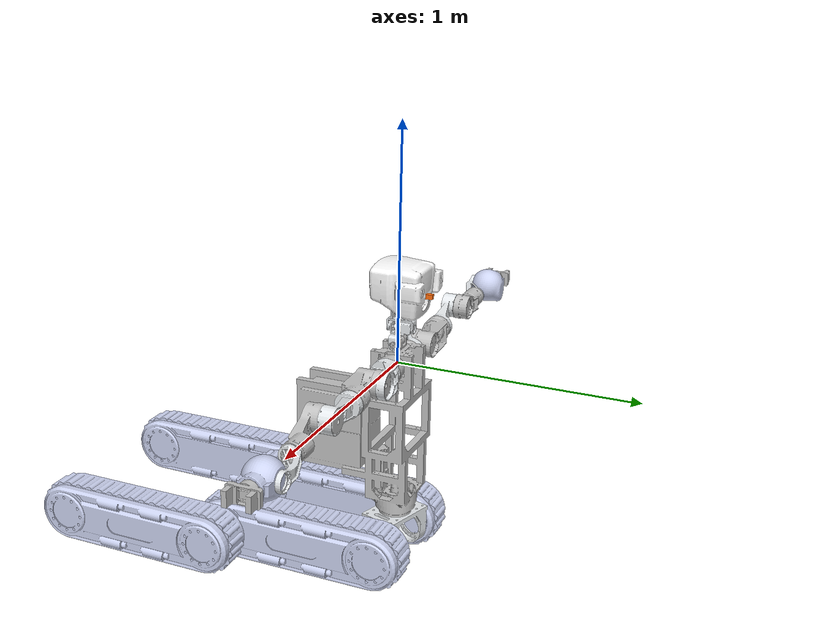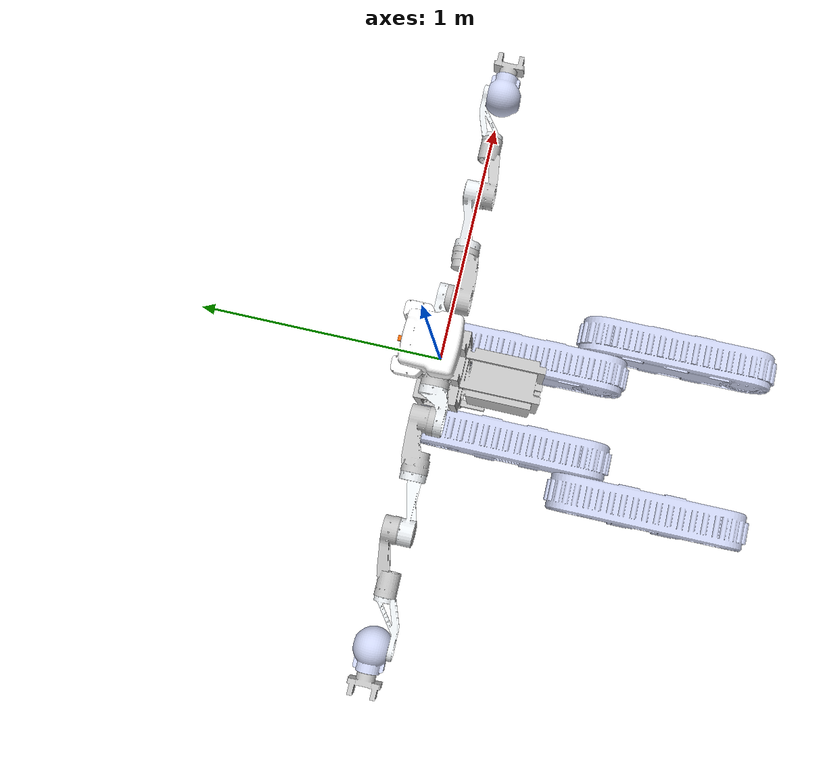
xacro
<?xml version="1.0" encoding="utf-8"?>
<robot  name="jqr" xmlns:xacro='rosxacro'>
  <!-- gazebo roscontrol -->
	<gazebo>
	    <plugin name="ros_control" filename="libgazebo_ros_control.so">
	       <robotNamespace>/</robotNamespace>
	       <robotSimType>gazebo_ros_control/DefaultRobotHWSim</robotSimType>
	    </plugin>
    </gazebo>

    <!-- xiongqiang -->
    <xacro:include filename="$(find mobile_dual_arm_robot)/urdf/xq.xacro" />

    <!-- arm -->
    <xacro:include filename="$(find mobile_dual_arm_robot)/urdf/leftarm.xacro" />
    <xacro:include filename="$(find mobile_dual_arm_robot)/urdf/rightarm.xacro" />

    <xacro:include filename="$(find mobile_dual_arm_robot)/urdf/arm.gazebo.xacro" />
      <xacro:arm_gazebo name="leftarm" />
      <xacro:arm_gazebo name="rightarm" />

    <!-- head -->
    <xacro:include filename="$(find mobile_dual_arm_robot)/urdf/head4.xacro" />
    <!-- camera -->
    <xacro:include filename="$(find mobile_dual_arm_robot)/urdf/camera.xacro" />

    <!-- lv dai -->
    <xacro:include filename="$(find mobile_dual_arm_robot)/urdf/ld.xacro" />
      <!-- left track -->
      <xacro:ld name="left" parent="yao_link" leg1_upper="3.1415926" leg1_lower="0">
        <origin xyz=" 0 0.21088 0" rpy="0 0 -1.5708" />
      </xacro:ld>
      <!-- right track -->
      <xacro:ld name="right" parent="yao_link"  leg1_upper="0" leg1_lower="-3.1415926">
        <origin xyz=" 0 -0.21088 0" rpy="0 3.1415926 -1.5708" />
      </xacro:ld>

      <gazebo>
        <plugin filename="libSimpleTrackedVehiclePlugin.so" name="simple_tracked_vehicle">
            <body>yao_link</body>
            <robot_namespace>robot</robot_namespace>
            <left_track>leftleg_link1</left_track>
            <right_track>rightleg_link1</right_track>
            <left_flipper>leftleg_link2</left_flipper>
            <right_flipper>rightleg_link2</right_flipper>
            <track_mu>2</track_mu>
            <track_mu2>0.5</track_mu2>
        </plugin>
      </gazebo>
      <gazebo>
        <plugin filename="libKeysToCmdVelPlugin.so" name="keyboard_control">
            <publish_as_twist>true</publish_as_twist>
            <cmd_vel_topic>~/robot/cmd_vel_twist</cmd_vel_topic>
            <linear_increment>0.2</linear_increment>
            <angular_increment>0.3</angular_increment>
        </plugin>
      </gazebo>

</robot>

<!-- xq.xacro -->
<robot name="mobile_dual_arm_robot" xmlns:xacro='rosxacro'>
  <link
    name="base_link">
    <inertial>
      <origin
        xyz="-0.000245947869981271 -0.186110769844011 -0.300559114524674"
        rpy="0 0 0" />
      <mass
        value="29.230369056693" />
      <inertia
        ixx="1.34716988578229"
        ixy="-0.00265368667451038"
        ixz="0.00127378826841601"
        iyy="0.909006705992246"
        iyz="-0.0548690070502819"
        izz="0.731431800891708" />
    </inertial>
    <visual>
      <origin
        xyz="0 0 0"
        rpy="0 0 0" />
      <geometry>
        <mesh
          filename="package://mobile_dual_arm_robot/meshes/base_link.STL" />
      </geometry>
      <material
        name="">
        <color
          rgba="0.752941176470588 0.752941176470588 0.752941176470588 1" />
      </material>
    </visual>
  </link>
  <link
    name="yao_link">
    <inertial>
      <origin
        xyz="-4.70664810752609E-17 1.00157612079759E-16 0.0619650186541176"
        rpy="0 0 -1.5708" />
      <mass
        value="1.2829439668615" />
      <inertia
        ixx="0.00751845949038677"
        ixy="-3.16997985837294E-09"
        ixz="-4.63089857794973E-18"
        iyy="0.0145758761435926"
        iyz="-5.84911832562006E-19"
        izz="0.0143225671493637" />
    </inertial>
    <visual>
      <origin
        xyz="0 0 0"
        rpy="0 0 -1.8708" />
      <geometry>
        <mesh
          filename="package://mobile_dual_arm_robot/meshes/yao_link.STL" />
      </geometry>
      <material
        name="">
        <color
          rgba="0.898039215686275 0.913725490196078 0.925490196078431 1" />
      </material>
    </visual>
  </link>
  <joint
    name="yao_joint"
    type="revolute">
    <origin
      xyz="0 0 -0.796"
      rpy="0 0 1.5708" />
    <parent
      link="base_link" />
    <child
      link="yao_link" />
    <axis
      xyz="0 0 -1" />
    <limit
      lower="-1.57"
      upper="1.57"
      effort="100"
      velocity="5" />
  </joint>

  <transmission name="yao_joint_transmission">
      <type>transmission_interface/SimpleTransmission</type>
      <joint name="yao_joint">
          <hardwareInterface>hardware_interface/EffortJointInterface</hardwareInterface>
      </joint>
      <actuator name="yao_joint_actuator">
          <hardwareInterface>hardware_interface/EffortJointInterface</hardwareInterface>
          <mechanicalReduction>1</mechanicalReduction>
          <motorTorqueConstant>1</motorTorqueConstant>
      </actuator>
  </transmission>

</robot>

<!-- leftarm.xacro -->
<robot  name="leftarm" xmlns:xacro="rosxacro">
  <link
    name="leftarm_link1">
    <inertial>
      <origin
        xyz="-5.5564E-06 -0.028843 -0.071947"
        rpy="0 0 0" />
      <mass
        value="0.18584" />
      <inertia
        ixx="0.0006488"
        ixy="2.9741E-08"
        ixz="-2.74E-08"
        iyy="0.0007339"
        iyz="0.00015111"
        izz="0.00049128" />
    </inertial>
    <visual>
      <origin
        xyz="0 0 0"
        rpy="0 0 0" />
      <geometry>
        <mesh
          filename="package://leftarm/meshes/leftarm_link1.STL" />
      </geometry>
      <material
        name="">
        <color
          rgba="0.89804 0.91373 0.92549 1" />
      </material>
    </visual>
    <collision>
      <origin
        xyz="0 0 0"
        rpy="0 0 0" />
      <geometry>
        <mesh
          filename="package://leftarm/meshes/leftarm_link1.STL" />
      </geometry>
    </collision>
  </link>
  <joint
    name="leftarm_joint1"
    type="revolute">
    <origin
      xyz="-0.252 0 0"
      rpy="1.5707963267949  -1.5707963267949   -1.5707963267949" />
    <parent
      link="base_link" />
    <child
      link="leftarm_link1" />
    <axis
      xyz="0 0 1" />
    <limit
      lower="-2.9671"
      upper="2.9671"
      effort="100"
      velocity="5" />
  </joint>
  <link
    name="leftarm_link2">
    <inertial>
      <origin
        xyz="-8.0024E-09 0.087182 -0.00048725"
        rpy="0 0 0" />
      <mass
        value="1.9049" />
      <inertia
        ixx="0.018774"
        ixy="-1.7267E-10"
        ixz="-2.3681E-10"
        iyy="0.0031059"
        iyz="0.0002545"
        izz="0.018629" />
    </inertial>
    <visual>
      <origin
        xyz="0 0 0"
        rpy="0 0 0" />
      <geometry>
        <mesh
          filename="package://leftarm/meshes/leftarm_link2.STL" />
      </geometry>
      <material
        name="">
        <color
          rgba="0.75294 0.75294 0.75294 1" />
      </material>
    </visual>
    <collision>
      <origin
        xyz="0 0 0"
        rpy="0 0 0" />
      <geometry>
        <mesh
          filename="package://leftarm/meshes/leftarm_link2.STL" />
      </geometry>
    </collision>
  </link>
  <joint
    name="leftarm_joint2"
    type="revolute">
    <origin
      xyz="0 0 0"
      rpy="1.5708 0 0" />
    <parent
      link="leftarm_link1" />
    <child
      link="leftarm_link2" />
    <axis
      xyz="0 0 1" />
    <limit
      lower="-2.0944"
      upper="2.0944"
      effort="100"
      velocity="5" />
  </joint>
  <link
    name="leftarm_link3">
    <inertial>
      <origin
        xyz="0.015505 -0.01761 -0.097265"
        rpy="0 0 0" />
      <mass
        value="0.20921" />
      <inertia
        ixx="0.0017392"
        ixy="2.2735E-05"
        ixz="-0.00022136"
        iyy="0.0018811"
        iyz="0.00015929"
        izz="0.00033312" />
    </inertial>
    <visual>
      <origin
        xyz="0 0 0"
        rpy="0 0 0" />
      <geometry>
        <mesh
          filename="package://leftarm/meshes/leftarm_link3.STL" />
      </geometry>
      <material
        name="">
        <color
          rgba="0.89804 0.91373 0.92549 1" />
      </material>
    </visual>
    <collision>
      <origin
        xyz="0 0 0"
        rpy="0 0 0" />
      <geometry>
        <mesh
          filename="package://leftarm/meshes/leftarm_link3.STL" />
      </geometry>
    </collision>
  </link>
  <joint
    name="leftarm_joint3"
    type="revolute">
    <origin
      xyz="0 0.4495 0"
      rpy="-1.5708 0 0" />
    <parent
      link="leftarm_link2" />
    <child
      link="leftarm_link3" />
    <axis
      xyz="0 0 1" />
    <limit
      lower="-2.9671"
      upper="2.9671"
      effort="100"
      velocity="5" />
  </joint>
  <link
    name="leftarm_link4">
    <inertial>
      <origin
        xyz="-0.011027 0.079985 -0.0010807"
        rpy="0 0 0" />
      <mass
        value="1.3369" />
      <inertia
        ixx="0.016778"
        ixy="0.0019889"
        ixz="-2.9606E-05"
        iyy="0.0021846"
        iyz="0.00011892"
        izz="0.016743" />
    </inertial>
    <visual>
      <origin
        xyz="0 0 0"
        rpy="0 0 0" />
      <geometry>
        <mesh
          filename="package://leftarm/meshes/leftarm_link4.STL" />
      </geometry>
      <material
        name="">
        <color
          rgba="0.75294 0.75294 0.75294 1" />
      </material>
    </visual>
    <collision>
      <origin
        xyz="0 0 0"
        rpy="0 0 0" />
      <geometry>
        <mesh
          filename="package://leftarm/meshes/leftarm_link4.STL" />
      </geometry>
    </collision>
  </link>
  <joint
    name="leftarm_joint4"
    type="revolute">
    <origin
      xyz="0.03 0 0"
      rpy="1.5708 0 0" />
    <parent
      link="leftarm_link3" />
    <child
      link="leftarm_link4" />
    <axis
      xyz="0 0 1" />
    <limit
      lower="-2.7925"
      upper="2.0944"
      effort="100"
      velocity="5" />
  </joint>
  <link
    name="leftarm_link5">
    <inertial>
      <origin
        xyz="1.0381E-08 -0.04436 -0.10543"
        rpy="0 0 0" />
      <mass
        value="0.10575" />
      <inertia
        ixx="0.00061714"
        ixy="-3.5417E-11"
        ixz="6.6878E-11"
        iyy="0.00056107"
        iyz="0.00017327"
        izz="0.00015958" />
    </inertial>
    <visual>
      <origin
        xyz="0 0 0"
        rpy="0 0 0" />
      <geometry>
        <mesh
          filename="package://leftarm/meshes/leftarm_link5.STL" />
      </geometry>
      <material
        name="">
        <color
          rgba="0.89804 0.91373 0.92549 1" />
      </material>
    </visual>
    <collision>
      <origin
        xyz="0 0 0"
        rpy="0 0 0" />
      <geometry>
        <mesh
          filename="package://leftarm/meshes/leftarm_link5.STL" />
      </geometry>
    </collision>
  </link>
  <joint
    name="leftarm_joint5"
    type="revolute">
    <origin
      xyz="-0.03 0.4495 0"
      rpy="-1.5708 0 0" />
    <parent
      link="leftarm_link4" />
    <child
      link="leftarm_link5" />
    <axis
      xyz="0 0 1" />
    <limit
      lower="-2.9671"
      upper="2.9671"
      effort="100"
      velocity="5" />
  </joint>
  <link
    name="leftarm_link6">
    <inertial>
      <origin
        xyz="-0.0011179 0.0073776 -0.002551"
        rpy="0 0 0" />
      <mass
        value="2.1621" />
      <inertia
        ixx="0.0060251"
        ixy="-1.7861E-05"
        ixz="-0.00013479"
        iyy="0.0050934"
        iyz="-5.6625E-05"
        izz="0.006213" />
    </inertial>
    <visual>
      <origin
        xyz="0 0 0"
        rpy="0 0 0" />
      <geometry>
        <mesh
          filename="package://leftarm/meshes/leftarm_link6.STL" />
      </geometry>
      <material
        name="">
        <color
          rgba="0.79216 0.81961 0.93333 1" />
      </material>
    </visual>
    <collision>
      <origin
        xyz="0 0 0"
        rpy="0 0 0" />
      <geometry>
        <mesh
          filename="package://leftarm/meshes/leftarm_link6.STL" />
      </geometry>
    </collision>
  </link>
  <joint
    name="leftarm_joint6"
    type="revolute">
    <origin
      xyz="0 0 0"
      rpy="1.5708 0 0" />
    <parent
      link="leftarm_link5" />
    <child
      link="leftarm_link6" />
    <axis
      xyz="0 0 1" />
    <limit
      lower="-2.1812"
      upper="2.1812"
      effort="100"
      velocity="5" />
  </joint>
  <link
    name="leftarm_link7">
    <inertial>
      <origin
        xyz="0 -0.001 0.13476"
        rpy="0 0 0" />
      <mass
        value="0.37671" />
      <inertia
        ixx="0.00071967"
        ixy="1.4537E-20"
        ixz="3.8228E-19"
        iyy="0.00034734"
        iyz="-2.11E-20"
        izz="0.0006435" />
    </inertial>
    <visual>
      <origin
        xyz="0 0 0"
        rpy="0 0 0" />
      <geometry>
        <mesh
          filename="package://leftarm/meshes/leftarm_link7.STL" />
      </geometry>
      <material
        name="">
        <color
          rgba="0.75294 0.75294 0.75294 1" />
      </material>
    </visual>
    <collision>
      <origin
        xyz="0 0 0"
        rpy="0 0 0" />
      <geometry>
        <mesh
          filename="package://leftarm/meshes/leftarm_link7.STL" />
      </geometry>
    </collision>
  </link>
  <joint
    name="leftarm_joint7"
    type="revolute">
    <origin
      xyz="0 0 0"
      rpy="-1.5707963267949 0 0" />
    <parent
      link="leftarm_link6" />
    <child
      link="leftarm_link7" />
    <axis
      xyz="0 0 1" />
    <limit
      lower="-2.9671"
      upper="2.9671"
      effort="100"
      velocity="5" />
  </joint>
</robot>

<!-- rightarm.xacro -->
<robot  name="rightarm" xmlns:xacro="rosxacro">
  <link
    name="rightarm_link1">
    <inertial>
      <origin
        xyz="-5.55636001209336E-06 -0.028842621821945 -0.0719468523797095"
        rpy="0 0 0" />
      <mass
        value="0.185843840147316" />
      <inertia
        ixx="0.00064879513756714"
        ixy="2.97405201701726E-08"
        ixz="-2.74002482400952E-08"
        iyy="0.000733900314751328"
        iyz="0.000151109528398381"
        izz="0.000491282759255514" />
    </inertial>
    <visual>
      <origin
        xyz="0 0 0"
        rpy="0 0 0" />
      <geometry>
        <mesh
          filename="package://rightarm/meshes/rightarm_link1.STL" />
      </geometry>
      <material
        name="">
        <color
          rgba="0.898039215686275 0.913725490196078 0.925490196078431 1" />
      </material>
    </visual>
    <collision>
      <origin
        xyz="0 0 0"
        rpy="0 0 0" />
      <geometry>
        <mesh
          filename="package://rightarm/meshes/rightarm_link1.STL" />
      </geometry>
    </collision>
  </link>
  <joint
    name="rightarm_joint1"
    type="revolute">
    <origin
      xyz="0.252 0 0"
      rpy="1.5707963267949 -1.5707963267949 1.5707963267949" />
    <parent
      link="base_link" />
    <child
      link="rightarm_link1" />
    <axis
      xyz="0 0 1" />
    <limit
      lower="-2.9671"
      upper="2.9671"
      effort="100"
      velocity="5" />
  </joint>
  <link
    name="rightarm_link2">
    <inertial>
      <origin
        xyz="-8.00238164622158E-09 0.087181912478348 -0.000487247269088532"
        rpy="0 0 0" />
      <mass
        value="1.90490933692951" />
      <inertia
        ixx="0.0187743359656438"
        ixy="-1.72667652358285E-10"
        ixz="-2.36806138854804E-10"
        iyy="0.0031058955885761"
        iyz="0.00025449626953172"
        izz="0.0186287374840551" />
    </inertial>
    <visual>
      <origin
        xyz="0 0 0"
        rpy="0 0 0" />
      <geometry>
        <mesh
          filename="package://rightarm/meshes/rightarm_link2.STL" />
      </geometry>
      <material
        name="">
        <color
          rgba="0.752941176470588 0.752941176470588 0.752941176470588 1" />
      </material>
    </visual>
    <collision>
      <origin
        xyz="0 0 0"
        rpy="0 0 0" />
      <geometry>
        <mesh
          filename="package://rightarm/meshes/rightarm_link2.STL" />
      </geometry>
    </collision>
  </link>
  <joint
    name="rightarm_joint2"
    type="revolute">
    <origin
      xyz="0 0 0"
      rpy="1.5708 0 0" />
    <parent
      link="rightarm_link1" />
    <child
      link="rightarm_link2" />
    <axis
      xyz="0 0 1" />
    <limit
      lower="-2.0944"
      upper="2.0944"
      effort="100"
      velocity="5" />
  </joint>
  <link
    name="rightarm_link3">
    <inertial>
      <origin
        xyz="0.0155054054014346 -0.0176104587173533 -0.0972649243526418"
        rpy="0 0 0" />
      <mass
        value="0.209213306011879" />
      <inertia
        ixx="0.00173915719253397"
        ixy="2.27350480852934E-05"
        ixz="-0.000221363794616361"
        iyy="0.0018810977872288"
        iyz="0.00015929064906947"
        izz="0.000333123310451503" />
    </inertial>
    <visual>
      <origin
        xyz="0 0 0"
        rpy="0 0 0" />
      <geometry>
        <mesh
          filename="package://rightarm/meshes/rightarm_link3.STL" />
      </geometry>
      <material
        name="">
        <color
          rgba="0.898039215686275 0.913725490196078 0.925490196078431 1" />
      </material>
    </visual>
    <collision>
      <origin
        xyz="0 0 0"
        rpy="0 0 0" />
      <geometry>
        <mesh
          filename="package://rightarm/meshes/rightarm_link3.STL" />
      </geometry>
    </collision>
  </link>
  <joint
    name="rightarm_joint3"
    type="revolute">
    <origin
      xyz="0 0.4495 0"
      rpy="-1.5708 0 0" />
    <parent
      link="rightarm_link2" />
    <child
      link="rightarm_link3" />
    <axis
      xyz="0 0 1" />
    <limit
      lower="-2.9671"
      upper="2.9671"
      effort="100"
      velocity="5" />
  </joint>
  <link
    name="rightarm_link4">
    <inertial>
      <origin
        xyz="-0.0110265333983113 0.079985203929629 -0.00108071218906545"
        rpy="0 0 0" />
      <mass
        value="1.33690625718003" />
      <inertia
        ixx="0.0167776214945798"
        ixy="0.00198890984901769"
        ixz="-2.96057292568204E-05"
        iyy="0.00218457251751039"
        iyz="0.000118920676489958"
        izz="0.0167428671342609" />
    </inertial>
    <visual>
      <origin
        xyz="0 0 0"
        rpy="0 0 0" />
      <geometry>
        <mesh
          filename="package://rightarm/meshes/rightarm_link4.STL" />
      </geometry>
      <material
        name="">
        <color
          rgba="0.752941176470588 0.752941176470588 0.752941176470588 1" />
      </material>
    </visual>
    <collision>
      <origin
        xyz="0 0 0"
        rpy="0 0 0" />
      <geometry>
        <mesh
          filename="package://rightarm/meshes/rightarm_link4.STL" />
      </geometry>
    </collision>
  </link>
  <joint
    name="rightarm_joint4"
    type="revolute">
    <origin
      xyz="0.03 0 0"
      rpy="1.5708 0 0" />
    <parent
      link="rightarm_link3" />
    <child
      link="rightarm_link4" />
    <axis
      xyz="0 0 1" />
    <limit
      lower="-2.7925"
      upper="2.0944"
      effort="100"
      velocity="5" />
  </joint>
  <link
    name="rightarm_link5">
    <inertial>
      <origin
        xyz="1.0380920345554E-08 -0.0443595329846337 -0.105428960201801"
        rpy="0 0 0" />
      <mass
        value="0.10575077384632" />
      <inertia
        ixx="0.000617136760733647"
        ixy="-3.54168104941269E-11"
        ixz="6.68780403784148E-11"
        iyy="0.000561067761108571"
        iyz="0.000173267808268953"
        izz="0.00015958291466493" />
    </inertial>
    <visual>
      <origin
        xyz="0 0 0"
        rpy="0 0 0" />
      <geometry>
        <mesh
          filename="package://rightarm/meshes/rightarm_link5.STL" />
      </geometry>
      <material
        name="">
        <color
          rgba="0.898039215686275 0.913725490196078 0.925490196078431 1" />
      </material>
    </visual>
    <collision>
      <origin
        xyz="0 0 0"
        rpy="0 0 0" />
      <geometry>
        <mesh
          filename="package://rightarm/meshes/rightarm_link5.STL" />
      </geometry>
    </collision>
  </link>
  <joint
    name="rightarm_joint5"
    type="revolute">
    <origin
      xyz="-0.03 0.4495 0"
      rpy="-1.5708 0 0" />
    <parent
      link="rightarm_link4" />
    <child
      link="rightarm_link5" />
    <axis
      xyz="0 0 1" />
    <limit
      lower="-2.9671"
      upper="2.9671"
      effort="100"
      velocity="5" />
  </joint>
  <link
    name="rightarm_link6">
    <inertial>
      <origin
        xyz="-0.00111786512590739 0.00737759119391557 -0.00255095894124477"
        rpy="0 0 0" />
      <mass
        value="2.16214825847122" />
      <inertia
        ixx="0.00602513474729964"
        ixy="-1.78610000917077E-05"
        ixz="-0.000134785697607459"
        iyy="0.0050933913728733"
        iyz="-5.66252208164908E-05"
        izz="0.00621299091987803" />
    </inertial>
    <visual>
      <origin
        xyz="0 0 0"
        rpy="0 0 0" />
      <geometry>
        <mesh
          filename="package://rightarm/meshes/rightarm_link6.STL" />
      </geometry>
      <material
        name="">
        <color
          rgba="0.792156862745098 0.819607843137255 0.933333333333333 1" />
      </material>
    </visual>
    <collision>
      <origin
        xyz="0 0 0"
        rpy="0 0 0" />
      <geometry>
        <mesh
          filename="package://rightarm/meshes/rightarm_link6.STL" />
      </geometry>
    </collision>
  </link>
  <joint
    name="rightarm_joint6"
    type="revolute">
    <origin
      xyz="0 0 0"
      rpy="1.5708 0 0" />
    <parent
      link="rightarm_link5" />
    <child
      link="rightarm_link6" />
    <axis
      xyz="0 0 -1" />
    <limit
      lower="-2.1812"
      upper="2.1812"
      effort="100"
      velocity="5" />
  </joint>
  <link
    name="rightarm_link7">
    <inertial>
      <origin
        xyz="1.11022302462516E-16 -0.000999999999999982 0.134757462209856"
        rpy="0 0 0" />
      <mass
        value="0.376714147207618" />
      <inertia
        ixx="0.00071966666838249"
        ixy="4.02513576305418E-19"
        ixz="1.87319411000545E-19"
        iyy="0.000347343623259773"
        iyz="3.3852533470092E-19"
        izz="0.000643499293433103" />
    </inertial>
    <visual>
      <origin
        xyz="0 0 0"
        rpy="0 0 0" />
      <geometry>
        <mesh
          filename="package://rightarm/meshes/rightarm_link7.STL" />
      </geometry>
      <material
        name="">
        <color
          rgba="0.752941176470588 0.752941176470588 0.752941176470588 1" />
      </material>
    </visual>
    <collision>
      <origin
        xyz="0 0 0"
        rpy="0 0 0" />
      <geometry>
        <mesh
          filename="package://rightarm/meshes/rightarm_link7.STL" />
      </geometry>
    </collision>
  </link>
  <joint
    name="rightarm_joint7"
    type="revolute">
    <origin
      xyz="0 0 0"
      rpy="-1.5708 0 0" />
    <parent
      link="rightarm_link6" />
    <child
      link="rightarm_link7" />
    <axis
      xyz="0 0 1" />
    <limit
      lower="-2.9671"
      upper="2.9671"
      effort="100"
      velocity="5" />
  </joint>
</robot>

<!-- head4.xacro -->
<robot name="ld" xmlns:xacro="rosxacro">
  <link
    name="dt_link">
    <inertial>
      <origin
        xyz="0.0516849383495008 -0.0115560055807243 0.000141995254727825"
        rpy="0 0 0" />
      <mass
        value="0.180568084535633" />
      <inertia
        ixx="0.00022046120464693"
        ixy="2.53262012885174E-05"
        ixz="2.11077017755422E-06"
        iyy="0.000180601497897925"
        iyz="-2.74036903866306E-07"
        izz="0.000200824114886045" />
    </inertial>
    <visual>
      <origin
        xyz="0 0 0"
        rpy="0 0 0" />
      <geometry>
        <mesh
          filename="package://head4/meshes/dt_link.STL" />
      </geometry>
      <material
        name="">
        <color
          rgba="0.898039215686275 0.913725490196078 0.925490196078431 1" />
      </material>
    </visual>
  </link>
  <joint
    name="dt_joint"
    type="revolute">
    <origin
      xyz="0 0 0.092"
      rpy="1.5708 -1.5708 1.5708" />
    <parent
      link="base_link" />
    <child
      link="dt_link" />
    <axis
      xyz="0 0 -1" />
    <limit
      lower="-0.6981"
      upper="0.7854"
      effort="100"
      velocity="5" />
  </joint>
  <link
    name="pt_link">
    <inertial>
      <origin
        xyz="3.97378004429138E-05 0.0733141911165105 0.00301715107726889"
        rpy="0 0 0" />
      <mass
        value="0.187257232807549" />
      <inertia
        ixx="0.000380798598802808"
        ixy="-1.1249746034794E-07"
        ixz="-1.72721961806269E-08"
        iyy="0.000143202097066812"
        iyz="3.00875139093559E-05"
        izz="0.00029193641072338" />
    </inertial>
    <visual>
      <origin
        xyz="0 0 0"
        rpy="0 0 0" />
      <geometry>
        <mesh
          filename="package://head4/meshes/pt_link.STL" />
      </geometry>
      <material
        name="">
        <color
          rgba="0.898039215686275 0.913725490196078 0.925490196078431 1" />
      </material>
    </visual>
  </link>
  <joint
    name="pt_joint"
    type="revolute">
    <origin
      xyz="0.064 0 0"
      rpy="1.5708 1.5708 0" />
    <parent
      link="dt_link" />
    <child
      link="pt_link" />
    <axis
      xyz="0 0 -1" />
    <limit
      lower="-0.7854"
      upper="0.7854"
      effort="100"
      velocity="5" />
  </joint>
  <link
    name="yt_link">
    <inertial>
      <origin
        xyz="0.0405802046278408 8.11345843966172E-05 -0.0431283416137569"
        rpy="0 0 0" />
      <mass
        value="0.991335636374897" />
      <inertia
        ixx="0.00984269640144693"
        ixy="4.51352378221221E-06"
        ixz="-0.000503542763797524"
        iyy="0.00695114192221842"
        iyz="-9.4441744532797E-06"
        izz="0.0114215688919503" />
    </inertial>
    <visual>
      <origin
        xyz="0 0 0"
        rpy="0 0 0" />
      <geometry>
        <mesh
          filename="package://head4/meshes/yt_link.STL" />
      </geometry>
      <material
        name="">
        <color
          rgba="1 1 1 1" />
      </material>
    </visual>
  </link>
  <joint
    name="yt_joint"
    type="revolute">
    <origin
      xyz="0 0.147 0"
      rpy="1.5708 -1.5708 0" />
    <parent
      link="pt_link" />
    <child
      link="yt_link" />
    <axis
      xyz="0 0 -1" />
    <limit
      lower="-1.57"
      upper="1.57"
      effort="100"
      velocity="5" />
  </joint>

  <transmission name="dt_joint_transmission">
      <type>transmission_interface/SimpleTransmission</type>
      <joint name="dt_joint">
          <hardwareInterface>hardware_interface/EffortJointInterface</hardwareInterface>
      </joint>
      <actuator name="dt_joint_actuator">
          <hardwareInterface>hardware_interface/EffortJointInterface</hardwareInterface>
          <mechanicalReduction>1</mechanicalReduction>
          <motorTorqueConstant>1</motorTorqueConstant>
      </actuator>
  </transmission>
  <transmission name="pt_joint_transmission">
      <type>transmission_interface/SimpleTransmission</type>
      <joint name="pt_joint">
          <hardwareInterface>hardware_interface/EffortJointInterface</hardwareInterface>
      </joint>
      <actuator name="pt_joint_actuator">
          <hardwareInterface>hardware_interface/EffortJointInterface</hardwareInterface>
          <mechanicalReduction>1</mechanicalReduction>
          <motorTorqueConstant>1</motorTorqueConstant>
      </actuator>
  </transmission>
  <transmission name="yt_joint_transmission">
      <type>transmission_interface/SimpleTransmission</type>
      <joint name="yt_joint">
          <hardwareInterface>hardware_interface/EffortJointInterface</hardwareInterface>
      </joint>
      <actuator name="yt_joint_actuator">
          <hardwareInterface>hardware_interface/EffortJointInterface</hardwareInterface>
          <mechanicalReduction>1</mechanicalReduction>
          <motorTorqueConstant>1</motorTorqueConstant>
      </actuator>
  </transmission>

</robot>

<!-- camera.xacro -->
<robot name="camera1" xmlns:xacro="rosxacro">
  <!-- Link1 -->
  <gazebo reference="camera1">
    <material>Gazebo/Orange</material>
  </gazebo>

  <material name="orange">
    <color rgba="1.0 0.423529411765 0.0392156862745 1.0"/>
  </material>

  <!-- Used for fixing robot to Gazebo 'base_link' -->
  <joint    name="camera_joint" type="revolute">
    <origin      xyz="0.12 0 0.0"      rpy="3.1415926 0 0" />
    <parent      link="yt_link" />
    <child      link="camera1" />
    <axis      xyz="0 0 1" />
    <limit lower="0" upper="0" effort="500" velocity="0.1" />
  </joint>
  <!-- camera Link -->
  <link name="camera1">
    <visual>
      <origin rpy="0 0 0" xyz="0 0 0.0"/>
      <geometry>
        <box size="0.05 0.02 0.02"/>
      </geometry>
      <material name="orange"/>
    </visual>
    <inertial>
      <origin rpy="0 0 0" xyz="0 0 1.0"/>
      <mass value="0.01"/>
      <inertia ixx="0.00334166666667" ixy="0.0" ixz="0.0" iyy="0.00334166666667" iyz="0.0" izz="0.0000166666666667"/>
    </inertial>
  </link>

  <!-- camera -->
  <gazebo reference="camera1">
    <sensor type="camera" name="camera1">
      <update_rate>30.0</update_rate>
      <camera name="top">
        <horizontal_fov>1.3962634</horizontal_fov>
        <image>
          <width>640</width>
          <height>480</height>
          <format>R8G8B8</format>
        </image>
        <clip>
          <near>0.04</near>
          <far>10</far>
        </clip>
      </camera>
      <plugin name="camera_controller" filename="libgazebo_ros_camera.so">
        <alwaysOn>true</alwaysOn>
        <updateRate>0.0</updateRate>
        <cameraName>camera1</cameraName>
        <imageTopicName>image_raw</imageTopicName>
        <cameraInfoTopicName>camera_info</cameraInfoTopicName>
        <frameName>base_link</frameName>
        <hackBaseline>0.07</hackBaseline>
        <distortionK1>0.0</distortionK1>
        <distortionK2>0.0</distortionK2>
        <distortionK3>0.0</distortionK3>
        <distortionT1>0.0</distortionT1>
        <distortionT2>0.0</distortionT2>
      </plugin>
    </sensor>
  </gazebo>

</robot>

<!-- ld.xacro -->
<robot name="ld" xmlns:xacro="rosxacro">

<xacro:macro name="ld" params="name parent leg1_upper leg1_lower *first_track_origin">
  <link
    name="${name}leg_link1">
    <inertial>
      <origin
        xyz="0.000306585056913111 -0.35 6.93889390390723E-17"
        rpy="0 0 0" />
      <mass
        value="39.7184469707484" />
      <inertia
        ixx="2.94087900879581"
        ixy="8.35081401726244E-17"
        ixz="1.19343525101845E-17"
        iyy="0.300956836519244"
        iyz="0.000713821936820183"
        izz="2.82439672812221" />
    </inertial>
    <visual>
      <origin
        xyz="0 0 0"
        rpy="0 0 0" />
      <geometry>
        <mesh
          filename="package://ld/meshes/leftleg_link1.obj" />
      </geometry>
      <material
        name="">
        <color
          rgba="0.792156862745098 0.819607843137255 0.933333333333333 1" />
      </material>
    </visual>

    <collision>
      <origin xyz="0.0 0.0 0.0" rpy="0.0 1.5708 0.0"/>
      <geometry>
        <cylinder radius="0.14" length="0.18"/>
      </geometry>
      <material name="red" >
        <color rgba="1.0 0.0 0.0 0.5"/>
      </material>
    </collision>
    <collision>
      <origin xyz="0.0 -0.35 0.0" rpy="0.0 1.5708 0.0"/>
      <geometry>
        <box size="0.28 0.7 0.18"/>
      </geometry>
      <material name="blue" >
        <color rgba="0.0 0.0 1.0 0.5"/>
      </material>
    </collision>
    <collision>
      <origin xyz="0.0 -0.7 0.0" rpy="0.0 1.5708 0.0"/>
      <geometry>
        <cylinder radius="0.14" length="0.18"/>
      </geometry>
      <material name="red" >
        <color rgba="1.0 0.0 0.0 0.5"/>
      </material>
    </collision>

  </link>
  <joint
    name="${name}leg_joint1"
    type="revolute">
    <xacro:insert_block name="first_track_origin"/>
    <parent
      link="${parent}" />
    <child
      link="${name}leg_link1" />
    <axis
      xyz="1 0 0" />
    <limit
      lower="${leg1_lower}"
      upper="${leg1_upper}"
      effort="500"
      velocity="5" />
  </joint>
  <link
    name="${name}leg_link2">
    <inertial>
      <origin
        xyz="0.000306585056913167 -0.35 -5.55111512312578E-17"
        rpy="0 0 0" />
      <mass
        value="39.7184469707484" />
      <inertia
        ixx="2.94087900879582"
        ixy="-7.02932166348829E-17"
        ixz="-8.08788151447156E-18"
        iyy="0.300956836519244"
        iyz="0.000713821936820406"
        izz="2.82439672812221" />
    </inertial>
    <visual>
      <origin
        xyz="0 0 0"
        rpy="0 0 0" />
      <geometry>
        <mesh
          filename="package://ld/meshes/leftleg_link1.obj" />
      </geometry>
      <material
        name="">
        <color
          rgba="0.792156862745098 0.819607843137255 0.933333333333333 1" />
      </material>
    </visual>

    <collision>
      <origin xyz="0.0 -0.35 0.0" rpy="0.0 1.5708 0.0"/>
      <geometry>
        <box size="0.28 0.7 0.18"/>
      </geometry>
      <material name="blue" >
        <color rgba="0.0 0.0 1.0 0.5"/>
      </material>
    </collision>
    <collision>
      <origin xyz="0.0 -0.7 0.0" rpy="0.0 1.5708 0.0"/>
      <geometry>
        <cylinder radius="0.14" length="0.18"/>
      </geometry>
      <material name="red" >
        <color rgba="1.0 0.0 0.0 0.5"/>
      </material>
    </collision>

  </link>
  <joint
    name="${name}leg_joint2"
    type="revolute">
    <origin
      xyz="-0.17775 -0.7 0"
      rpy="0 0 0" />
    <parent
      link="${name}leg_link1" />
    <child
      link="${name}leg_link2" />
    <axis
      xyz="1 0 0" />
    <limit
      lower="-3.1415926"
      upper="3.1415926"
      effort="500"
      velocity="5" />
  </joint>

  <transmission name="${name}_leg_joint1_transmission">
      <type>transmission_interface/SimpleTransmission</type>
      <joint name="${name}leg_joint1">
          <hardwareInterface>hardware_interface/EffortJointInterface</hardwareInterface>
      </joint>
      <actuator name="${name}leg_joint1_actuator">
          <hardwareInterface>hardware_interface/EffortJointInterface</hardwareInterface>
          <mechanicalReduction>1</mechanicalReduction>
          <motorTorqueConstant>1</motorTorqueConstant>
      </actuator>
  </transmission>
  <transmission name="${name}_leg_joint2_transmission">
      <type>transmission_interface/SimpleTransmission</type>
      <joint name="${name}leg_joint2">
          <hardwareInterface>hardware_interface/EffortJointInterface</hardwareInterface>
      </joint>
      <actuator name="${name}leg_joint2_actuator">
          <hardwareInterface>hardware_interface/EffortJointInterface</hardwareInterface>
          <mechanicalReduction>1</mechanicalReduction>
          <motorTorqueConstant>1</motorTorqueConstant>
      </actuator>
  </transmission>

</xacro:macro>
</robot>
